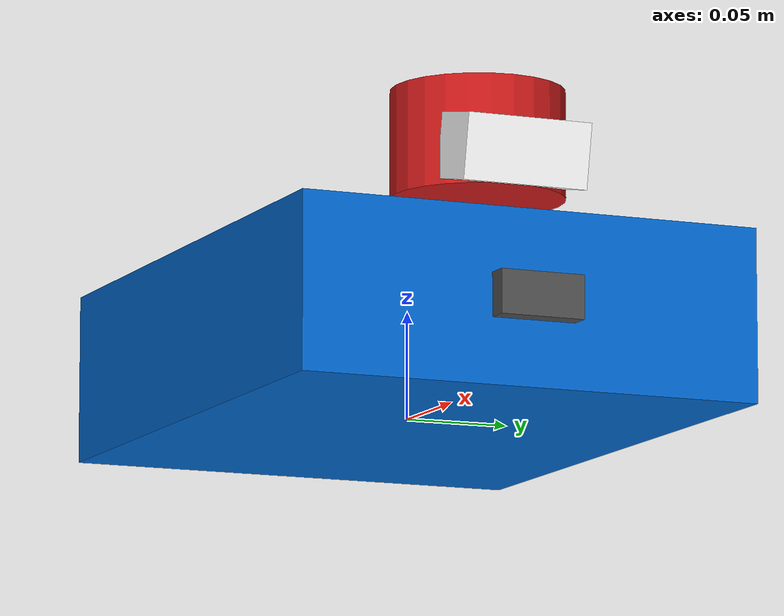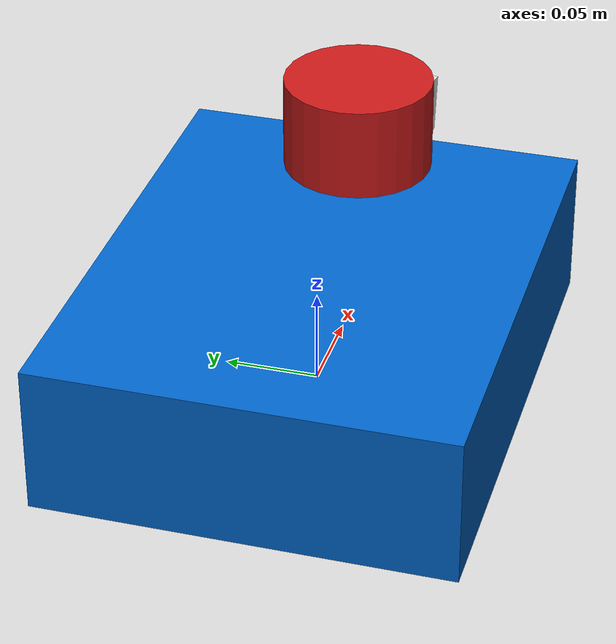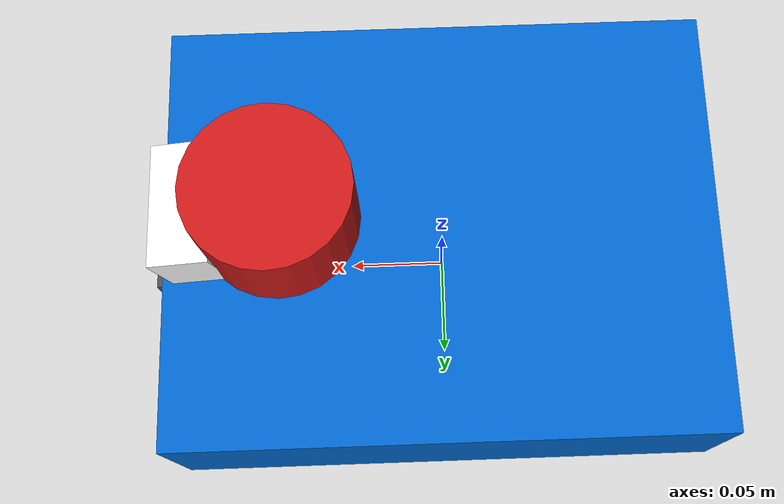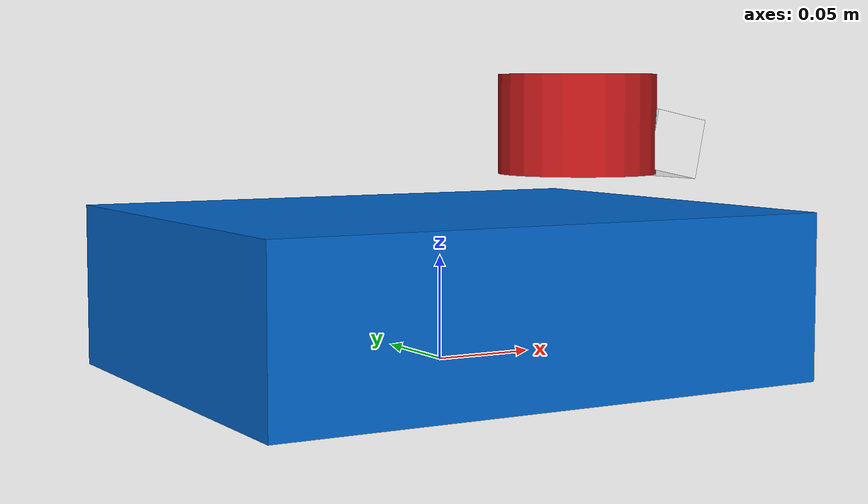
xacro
<?xml version="1.0"?>

<robot name="buildscan_rover" xmlns:xacro="http://www.ros.org/wiki/xacro">

  <!-- ═══════════════════════════════════════════════════════════════════════
       PARAMETERS
       ═══════════════════════════════════════════════════════════════════════ -->

  <xacro:property name="robot_name"       value="buildscan_rover"/>

  <!-- Chassis -->
  <xacro:property name="chassis_length"   value="0.28"/>
  <xacro:property name="chassis_width"    value="0.22"/>
  <xacro:property name="chassis_height"   value="0.08"/>
  <xacro:property name="chassis_mass"     value="1.5"/>

  <!-- Wheels -->
  <xacro:property name="wheel_radius"     value="0.033"/>
  <xacro:property name="wheel_thickness"  value="0.025"/>
  <xacro:property name="wheel_mass"       value="0.12"/>
  <xacro:property name="wheel_separation" value="0.160"/>   <!-- track width -->
  <xacro:property name="wheel_offset_x"   value="0.075"/>   <!-- front/rear from center -->

  <!-- Colors -->
  <material name="grey">  <color rgba="0.3 0.3 0.3 1.0"/> </material>
  <material name="black"> <color rgba="0.1 0.1 0.1 1.0"/> </material>
  <material name="blue">  <color rgba="0.0 0.4 0.8 1.0"/> </material>
  <material name="white"> <color rgba="1.0 1.0 1.0 1.0"/> </material>
  <material name="red">   <color rgba="0.8 0.1 0.1 1.0"/> </material>

  <!-- ═══════════════════════════════════════════════════════════════════════
       INERTIA MACROS
       ═══════════════════════════════════════════════════════════════════════ -->

  <xacro:macro name="box_inertial" params="mass x y z">
    <inertial>
      <mass value="${mass}"/>
      <inertia
        ixx="${(1/12)*mass*(y*y+z*z)}"
        iyy="${(1/12)*mass*(x*x+z*z)}"
        izz="${(1/12)*mass*(x*x+y*y)}"
        ixy="0" ixz="0" iyz="0"/>
    </inertial>
  </xacro:macro>

  <xacro:macro name="cylinder_inertial" params="mass r h">
    <inertial>
      <mass value="${mass}"/>
      <inertia
        ixx="${(1/12)*mass*(3*r*r+h*h)}"
        iyy="${(1/12)*mass*(3*r*r+h*h)}"
        izz="${0.5*mass*r*r}"
        ixy="0" ixz="0" iyz="0"/>
    </inertial>
  </xacro:macro>

  <!-- ═══════════════════════════════════════════════════════════════════════
       WHEEL MACRO
       ═══════════════════════════════════════════════════════════════════════ -->

  <xacro:macro name="wheel" params="name x_pos y_pos">

    <link name="${name}_wheel">
      <visual>
        <geometry>
          <cylinder radius="${wheel_radius}" length="${wheel_thickness}"/>
        </geometry>
        <material name="black"/>
      </visual>
      <collision>
        <geometry>
          <cylinder radius="${wheel_radius}" length="${wheel_thickness}"/>
        </geometry>
      </collision>
      <xacro:cylinder_inertial mass="${wheel_mass}" r="${wheel_radius}" h="${wheel_thickness}"/>
    </link>

    <joint name="${name}_wheel_joint" type="continuous">
      <parent link="base_link"/>
      <child  link="${name}_wheel"/>
      <origin xyz="${x_pos} ${y_pos} 0" rpy="${pi/2} 0 0"/>
      <axis xyz="0 0 1"/>
      <dynamics damping="0.05" friction="0.1"/>
    </joint>

    <!-- Gazebo wheel properties -->
    <gazebo reference="${name}_wheel">
      <mu1>1.0</mu1>
      <mu2>1.0</mu2>
      <kp>500000</kp>
      <kd>10</kd>
      <material>Gazebo/Black</material>
    </gazebo>

  </xacro:macro>

  <!-- ═══════════════════════════════════════════════════════════════════════
       BASE LINKS
       ═══════════════════════════════════════════════════════════════════════ -->

  <!-- base_footprint: zero-height reference frame on the ground -->
  <link name="base_footprint"/>

  <joint name="base_footprint_joint" type="fixed">
    <parent link="base_footprint"/>
    <child  link="base_link"/>
    <origin xyz="0 0 ${wheel_radius}" rpy="0 0 0"/>
  </joint>

  <!-- base_link: center of the chassis -->
  <link name="base_link">
    <visual>
      <geometry>
        <box size="${chassis_length} ${chassis_width} ${chassis_height}"/>
      </geometry>
      <material name="blue"/>
    </visual>
    <collision>
      <geometry>
        <box size="${chassis_length} ${chassis_width} ${chassis_height}"/>
      </geometry>
    </collision>
    <xacro:box_inertial mass="${chassis_mass}"
      x="${chassis_length}" y="${chassis_width}" z="${chassis_height}"/>
  </link>

  <gazebo reference="base_link">
    <material>Gazebo/Blue</material>
  </gazebo>

  <!-- ═══════════════════════════════════════════════════════════════════════
       WHEELS — 4WD differential drive
       ═══════════════════════════════════════════════════════════════════════ -->

  <xacro:wheel name="front_left"  x_pos=" ${wheel_offset_x}" y_pos=" ${wheel_separation/2}"/>
  <xacro:wheel name="front_right" x_pos=" ${wheel_offset_x}" y_pos="-${wheel_separation/2}"/>
  <xacro:wheel name="rear_left"   x_pos="-${wheel_offset_x}" y_pos=" ${wheel_separation/2}"/>
  <xacro:wheel name="rear_right"  x_pos="-${wheel_offset_x}" y_pos="-${wheel_separation/2}"/>

  <link name="camera_link">
    <visual>
      <geometry> <box size="0.03 0.06 0.03"/> </geometry>
      <material name="white"/>
    </visual>
    <collision>
      <geometry> <box size="0.03 0.06 0.03"/> </geometry>
    </collision>
    <inertial>
      <mass value="0.05"/>
      <inertia ixx="0.0001" iyy="0.0001" izz="0.0001" ixy="0" ixz="0" iyz="0"/>
    </inertial>
  </link>

  <joint name="camera_joint" type="fixed">
    <parent link="base_link"/>
    <child  link="camera_link"/>
    <origin xyz="${chassis_length/2 - 0.02} 0 ${chassis_height/2 + 0.03}" rpy="0 0.2 0"/>
  </joint>

  <!-- Camera optical frame -->
  <link name="camera_optical_link"/>
  <joint name="camera_optical_joint" type="fixed">
    <parent link="camera_link"/>
    <child  link="camera_optical_link"/>
    <origin xyz="0 0 0" rpy="${-pi/2} 0 ${-pi/2}"/>
  </joint>

  <!-- Gazebo camera plugin -->
  <gazebo reference="camera_link">
    <sensor type="camera" name="buildscan_camera">
      <update_rate>10.0</update_rate>
      <camera name="camera">
        <horizontal_fov>1.3962634</horizontal_fov>
        <image>
          <width>640</width>
          <height>480</height>
          <format>R8G8B8</format>
        </image>
        <clip>
          <near>0.02</near>
          <far>20</far>
        </clip>
      </camera>
      <plugin name="camera_controller" filename="libgazebo_ros_camera.so">
        <alwaysOn>true</alwaysOn>
        <updateRate>10.0</updateRate>
        <cameraName>camera</cameraName>
        <imageTopicName>/camera/image_raw</imageTopicName>
        <cameraInfoTopicName>/camera/camera_info</cameraInfoTopicName>
        <frameName>camera_optical_link</frameName>
      </plugin>
    </sensor>
  </gazebo>

  <!-- ═══════════════════════════════════════════════════════════════════════
       LIDAR SENSOR — maps to /scan
       ═══════════════════════════════════════════════════════════════════════ -->

  <link name="laser">
    <visual>
      <geometry> <cylinder radius="0.04" length="0.05"/> </geometry>
      <material name="red"/>
    </visual>
    <collision>
      <geometry> <cylinder radius="0.04" length="0.05"/> </geometry>
    </collision>
    <inertial>
      <mass value="0.15"/>
      <inertia ixx="0.001" iyy="0.001" izz="0.001" ixy="0" ixz="0" iyz="0"/>
    </inertial>
  </link>

  <joint name="laser_joint" type="fixed">
    <parent link="base_link"/>
    <child  link="laser"/>
    <origin xyz="0.08 0 ${chassis_height/2 + 0.04}" rpy="0 0 0"/>
  </joint>

  <!-- Gazebo LiDAR plugin — publishes /scan -->
  <gazebo reference="laser">
    <sensor type="ray" name="lidar">
      <pose>0 0 0 0 0 0</pose>
      <visualize>true</visualize>
      <update_rate>10</update_rate>
      <ray>
        <scan>
          <horizontal>
            <samples>360</samples>
            <resolution>1</resolution>
            <min_angle>-3.14159</min_angle>
            <max_angle>3.14159</max_angle>
          </horizontal>
        </scan>
        <range>
          <min>0.10</min>
          <max>10.0</max>
          <resolution>0.01</resolution>
        </range>
        <noise>
          <type>gaussian</type>
          <mean>0.0</mean>
          <stddev>0.01</stddev>
        </noise>
      </ray>
      <plugin name="gazebo_ros_lidar" filename="libgazebo_ros_ray_sensor.so">
        <ros>
          <remapping>~/out:=/scan</remapping>
        </ros>
        <output_type>sensor_msgs/LaserScan</output_type>
        <frame_name>laser</frame_name>
      </plugin>
    </sensor>
  </gazebo>

  <!-- ═══════════════════════════════════════════════════════════════════════
       ULTRASONIC SENSOR FRAME
       ═══════════════════════════════════════════════════════════════════════ -->

  <link name="ultrasonic_link">
    <visual>
      <geometry> <box size="0.02 0.04 0.02"/> </geometry>
      <material name="grey"/>
    </visual>
    <inertial>
      <mass value="0.01"/>
      <inertia ixx="0.0001" iyy="0.0001" izz="0.0001" ixy="0" ixz="0" iyz="0"/>
    </inertial>
  </link>

  <joint name="ultrasonic_joint" type="fixed">
    <parent link="base_link"/>
    <child  link="ultrasonic_link"/>
    <origin xyz="${chassis_length/2} 0 0" rpy="0 0 0"/>
  </joint>

  <gazebo>
    <plugin name="differential_drive" filename="libgazebo_ros_diff_drive.so">
      <update_rate>30</update_rate>

      <!-- Wheel joints -->
      <left_joint>front_left_wheel_joint</left_joint>
      <right_joint>front_right_wheel_joint</right_joint>

      <!-- Kinematics -->
      <wheel_separation>${wheel_separation}</wheel_separation>
      <wheel_diameter>${2*wheel_radius}</wheel_diameter>

      <!-- Limits -->
      <max_wheel_torque>20</max_wheel_torque>
      <max_wheel_acceleration>1.0</max_wheel_acceleration>

      <!-- Topics -->
      <command_topic>/cmd_vel</command_topic>
      <odometry_topic>/odom</odometry_topic>
      <odometry_frame>odom</odometry_frame>
      <robot_base_frame>base_footprint</robot_base_frame>

      <!-- Publish TF -->
      <publish_odom>true</publish_odom>
      <publish_odom_tf>true</publish_odom_tf>
      <publish_wheel_tf>false</publish_wheel_tf>
    </plugin>
  </gazebo>

</robot>
